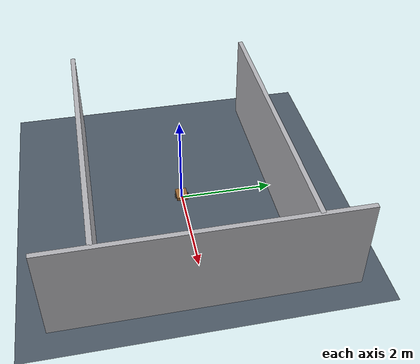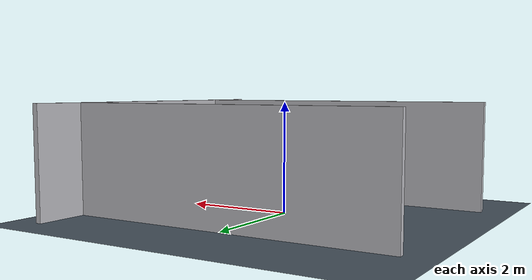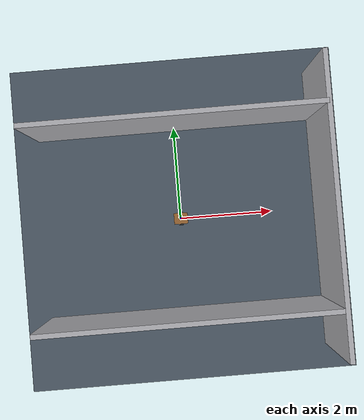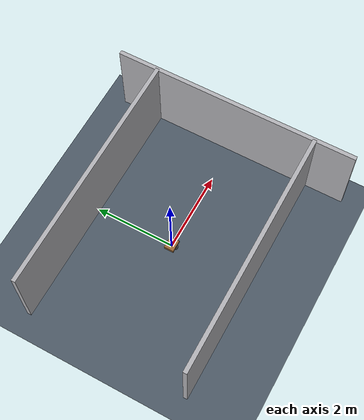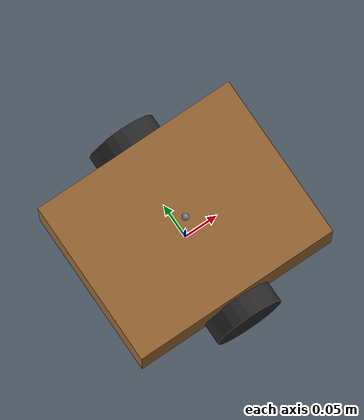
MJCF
<mujoco model="xmsim cart">
  <compiler angle="radian" autolimits="true"/>
  <option timestep="0.002" integrator="implicitfast"/>

  <default>
    <default class="wheel">
      <joint type="hinge" axis="0 1 0" damping="0.02"/>
      <general biastype="affine" gainprm="8 0 0" biasprm="0 0 -8"
               forcerange="-6 6" ctrlrange="-30 30"/>
      <geom type="cylinder" size="0.05 0.02" zaxis="0 1 0" mass="0.4"
            friction="1.2 0.01 0.001" group="2" rgba="0.15 0.15 0.15 1"/>
    </default>
    <default class="part">
      <geom contype="0" conaffinity="0" group="2"/>
    </default>
  </default>

  <visual>
    <headlight diffuse="0.6 0.6 0.6" ambient="0.3 0.3 0.3" specular="0 0 0"/>
    <global azimuth="-130" elevation="-20" offwidth="320" offheight="240"/>
  </visual>
  <asset>
    <texture type="skybox" builtin="gradient" rgb1="0.3 0.5 0.7" rgb2="0 0 0"
             width="256" height="1536"/>
    <material name="wall" rgba="0.7 0.7 0.72 1"/>
  </asset>

  <worldbody>
    <light pos="0 0 3" dir="0 0 -1" directional="true"/>
    <geom name="floor" type="plane" size="0 0 0.05" condim="3"
          friction="1.2 0.01 0.001" rgba="0.3 0.35 0.4 1"/>
    <geom name="wall_px" type="box" size="0.05 3 1" pos="3 0 1" material="wall"/>
    <geom name="wall_py" type="box" size="3 0.05 1" pos="0 2 1" material="wall"/>
    <geom name="wall_ny" type="box" size="3 0.05 1" pos="0 -2 1" material="wall"/>

    <body name="chassis" pos="0 0 0.08">
      <freejoint name="chassis_free"/>
      <geom name="deck" class="part" type="box" size="0.15 0.12 0.04" mass="3.0"
            rgba="0.6 0.4 0.2 1"/>
      <site name="imu" pos="0 0 0" size="0.005"/>
      <site name="lidar" pos="0.0 0 0.06" size="0.005"/>
      <camera name="front" pos="0.15 0 0.05" xyaxes="0 -1 0 0 0 1" fovy="70"/>
      <!-- passive caster at the front for stability -->
      <geom name="caster" class="part" type="sphere" size="0.03" pos="0.12 0 -0.05"
            contype="1" conaffinity="1" friction="0.05 0.005 0.0001"/>
      <body name="left_wheel" pos="0 0.13 -0.03">
        <joint name="left" class="wheel"/>
        <geom name="left" class="wheel"/>
      </body>
      <body name="right_wheel" pos="0 -0.13 -0.03">
        <joint name="right" class="wheel"/>
        <geom name="right" class="wheel"/>
      </body>
    </body>
  </worldbody>

  <actuator>
    <general class="wheel" name="left" joint="left"/>
    <general class="wheel" name="right" joint="right"/>
  </actuator>

  <sensor>
    <jointvel joint="left" name="left_vel"/>
    <jointvel joint="right" name="right_vel"/>
    <gyro site="imu" name="imu_gyro"/>
    <accelerometer site="imu" name="imu_acc"/>
    <framequat objtype="site" objname="imu" name="imu_quat"/>
  </sensor>
</mujoco>
